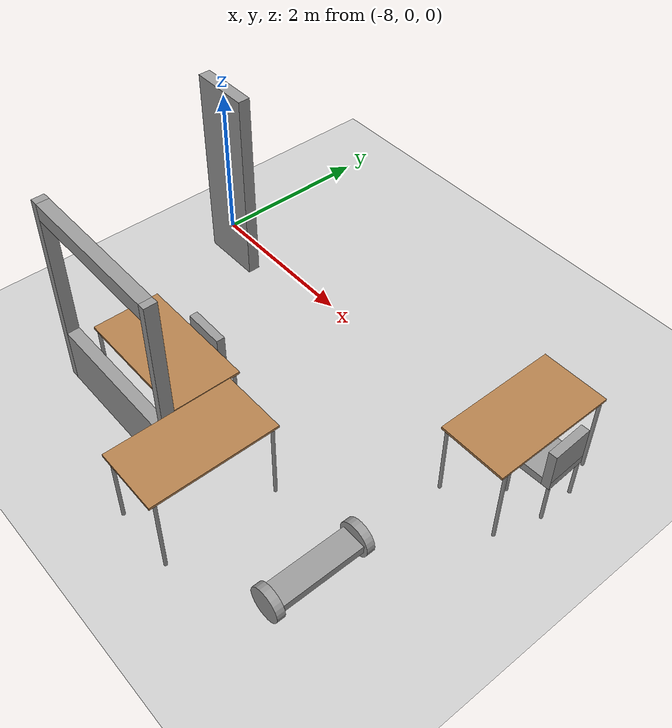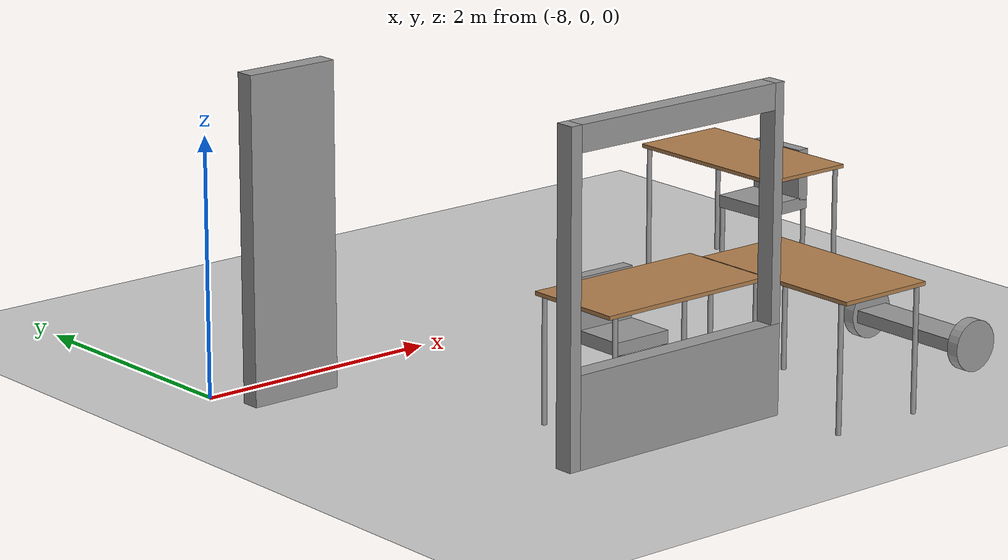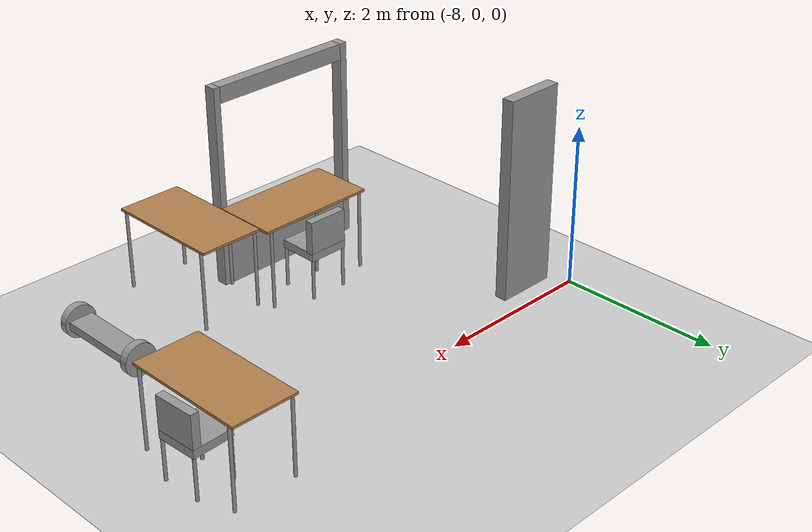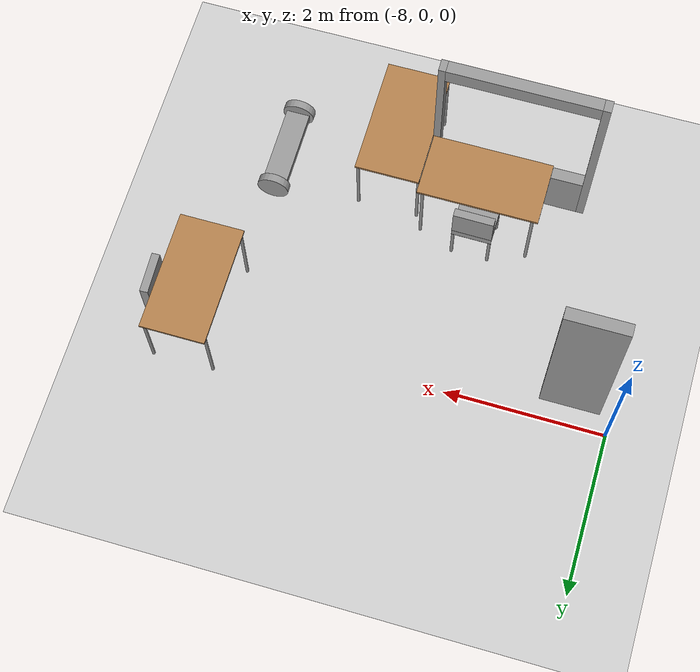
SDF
<sdf version="1.6">
 <world name="default">
  <model name="ground_plane">
   <static>1</static>
   <link name="link">
    <collision name="collision">
     <geometry><plane><normal>0 0 1</normal><size>100 100</size></plane></geometry>
     <surface>
      <contact><collide_bitmask>65535</collide_bitmask></contact>
      <friction><ode><mu>100</mu><mu2>50</mu2></ode></friction>
     </surface>
    </collision>
    <visual name="visual">
     <cast_shadows>0</cast_shadows>
     <geometry><plane><normal>0 0 1</normal><size>100 100</size></plane></geometry>
     <material>
      <script><uri>file://media/materials/scripts/gazebo.material</uri><name>Gazebo/Grey</name></script>
     </material>
    </visual>
   </link>
  </model>
  <model name="dunder_mifflin_scranton_full">
   <pose>4.5312 0.479645 0 0 -0 0</pose>
   <link name="Wall_14">
    <collision name="Wall_14_Collision">
     <geometry><box><size>0.75 0.15 2.5</size></box></geometry>
     <pose>0 0 1.25 0 -0 0</pose>
    </collision>
    <visual name="Wall_14_Visual">
     <pose>0 0 1.25 0 -0 0</pose>
     <geometry><box><size>0.75 0.15 2.5</size></box></geometry>
     <material>
      <script><uri>file://media/materials/scripts/gazebo.material</uri><name>Gazebo/Grey</name></script>
      <ambient>1 1 1 1</ambient>
     </material>
     <meta><layer>0</layer></meta>
    </visual>
    <pose>-12.0321 -0.8 0 0 -0 3.14159</pose>
   </link>
   <link name="Wall_75">
    <pose>-10.6016 -3.36883 0 0 -0 0</pose>
    <visual name="Wall_75_Visual_0">
     <pose>-0.952261 0 1.25 0 -0 0</pose>
     <geometry><box><size>0.095478 0.15 2.5</size></box></geometry>
     <material>
      <script><uri>file://media/materials/scripts/gazebo.material</uri><name>Gazebo/Grey</name></script>
      <ambient>1 1 1 1</ambient>
     </material>
     <meta><layer>0</layer></meta>
    </visual>
    <collision name="Wall_75_Collision_0">
     <geometry><box><size>0.095478 0.15 2.5</size></box></geometry>
     <pose>-0.952261 0 1.25 0 -0 0</pose>
    </collision>
    <visual name="Wall_75_Visual_1">
     <pose>0.047739 0 0.35 0 -0 0</pose>
     <geometry><box><size>1.90452 0.15 0.7</size></box></geometry>
     <material>
      <script><uri>file://media/materials/scripts/gazebo.material</uri><name>Gazebo/Grey</name></script>
      <ambient>1 1 1 1</ambient>
     </material>
     <meta><layer>0</layer></meta>
    </visual>
    <collision name="Wall_75_Collision_1">
     <geometry><box><size>1.90452 0.15 0.7</size></box></geometry>
     <pose>0.047739 0 0.35 0 -0 0</pose>
    </collision>
    <visual name="Wall_75_Visual_2">
     <pose>0.957739 0 1.6 0 -0 0</pose>
     <geometry><box><size>0.084522 0.15 1.8</size></box></geometry>
     <material>
      <script><uri>file://media/materials/scripts/gazebo.material</uri><name>Gazebo/Grey</name></script>
      <ambient>1 1 1 1</ambient>
     </material>
     <meta><layer>0</layer></meta>
    </visual>
    <collision name="Wall_75_Collision_2">
     <geometry><box><size>0.084522 0.15 1.8</size></box></geometry>
     <pose>0.957739 0 1.6 0 -0 0</pose>
    </collision>
    <visual name="Wall_75_Visual_3">
     <pose>0.005478 0 2.4 0 -0 0</pose>
     <geometry><box><size>1.82 0.15 0.2</size></box></geometry>
     <material>
      <script><uri>file://media/materials/scripts/gazebo.material</uri><name>Gazebo/Grey</name></script>
      <ambient>1 1 1 1</ambient>
     </material>
     <meta><layer>0</layer></meta>
    </visual>
    <collision name="Wall_75_Collision_3">
     <geometry><box><size>1.82 0.15 0.2</size></box></geometry>
     <pose>0.005478 0 2.4 0 -0 0</pose>
    </collision>
   </link>
   <static>1</static>
  </model>
  <model name="table_0">
   <static>1</static>
   <link name="link">
    <collision name="surface">
     <pose>0 0 1 0 -0 0</pose>
     <geometry><box><size>1.5 0.8 0.03</size></box></geometry>
     <surface><friction><ode><mu>0.6</mu><mu2>0.6</mu2></ode></friction></surface>
    </collision>
    <visual name="visual1">
     <pose>0 0 1 0 -0 0</pose>
     <geometry><box><size>1.5 0.8 0.03</size></box></geometry>
     <material>
      <script><uri>file://media/materials/scripts/gazebo.material</uri><name>Gazebo/Wood</name></script>
     </material>
    </visual>
    <collision name="front_left_leg">
     <pose>0.68 0.38 0.5 0 -0 0</pose>
     <geometry><cylinder><radius>0.02</radius><length>1</length></cylinder></geometry>
    </collision>
    <visual name="front_left_leg">
     <pose>0.68 0.38 0.5 0 -0 0</pose>
     <geometry><cylinder><radius>0.02</radius><length>1</length></cylinder></geometry>
     <material>
      <script><uri>file://media/materials/scripts/gazebo.material</uri><name>Gazebo/Grey</name></script>
     </material>
    </visual>
    <collision name="front_right_leg">
     <pose>0.68 -0.38 0.5 0 -0 0</pose>
     <geometry><cylinder><radius>0.02</radius><length>1</length></cylinder></geometry>
    </collision>
    <visual name="front_right_leg">
     <pose>0.68 -0.38 0.5 0 -0 0</pose>
     <geometry><cylinder><radius>0.02</radius><length>1</length></cylinder></geometry>
     <material>
      <script><uri>file://media/materials/scripts/gazebo.material</uri><name>Gazebo/Grey</name></script>
     </material>
    </visual>
    <collision name="back_right_leg">
     <pose>-0.68 -0.38 0.5 0 -0 0</pose>
     <geometry><cylinder><radius>0.02</radius><length>1</length></cylinder></geometry>
    </collision>
    <visual name="back_right_leg">
     <pose>-0.68 -0.38 0.5 0 -0 0</pose>
     <geometry><cylinder><radius>0.02</radius><length>1</length></cylinder></geometry>
     <material>
      <script><uri>file://media/materials/scripts/gazebo.material</uri><name>Gazebo/Grey</name></script>
     </material>
    </visual>
    <collision name="back_left_leg">
     <pose>-0.68 0.38 0.5 0 -0 0</pose>
     <geometry><cylinder><radius>0.02</radius><length>1</length></cylinder></geometry>
    </collision>
    <visual name="back_left_leg">
     <pose>-0.68 0.38 0.5 0 -0 0</pose>
     <geometry><cylinder><radius>0.02</radius><length>1</length></cylinder></geometry>
     <material>
      <script><uri>file://media/materials/scripts/gazebo.material</uri><name>Gazebo/Grey</name></script>
     </material>
    </visual>
   </link>
   <pose>-5.82777 -2.41287 0 0 -0 0</pose>
  </model>
  <model name="table_1">
   <static>1</static>
   <link name="link">
    <collision name="surface">
     <pose>0 0 1 0 -0 0</pose>
     <geometry><box><size>1.5 0.8 0.03</size></box></geometry>
     <surface><friction><ode><mu>0.6</mu><mu2>0.6</mu2></ode></friction></surface>
    </collision>
    <visual name="visual1">
     <pose>0 0 1 0 -0 0</pose>
     <geometry><box><size>1.5 0.8 0.03</size></box></geometry>
     <material>
      <script><uri>file://media/materials/scripts/gazebo.material</uri><name>Gazebo/Wood</name></script>
     </material>
    </visual>
    <collision name="front_left_leg">
     <pose>0.68 0.38 0.5 0 -0 0</pose>
     <geometry><cylinder><radius>0.02</radius><length>1</length></cylinder></geometry>
    </collision>
    <visual name="front_left_leg">
     <pose>0.68 0.38 0.5 0 -0 0</pose>
     <geometry><cylinder><radius>0.02</radius><length>1</length></cylinder></geometry>
     <material>
      <script><uri>file://media/materials/scripts/gazebo.material</uri><name>Gazebo/Grey</name></script>
     </material>
    </visual>
    <collision name="front_right_leg">
     <pose>0.68 -0.38 0.5 0 -0 0</pose>
     <geometry><cylinder><radius>0.02</radius><length>1</length></cylinder></geometry>
    </collision>
    <visual name="front_right_leg">
     <pose>0.68 -0.38 0.5 0 -0 0</pose>
     <geometry><cylinder><radius>0.02</radius><length>1</length></cylinder></geometry>
     <material>
      <script><uri>file://media/materials/scripts/gazebo.material</uri><name>Gazebo/Grey</name></script>
     </material>
    </visual>
    <collision name="back_right_leg">
     <pose>-0.68 -0.38 0.5 0 -0 0</pose>
     <geometry><cylinder><radius>0.02</radius><length>1</length></cylinder></geometry>
    </collision>
    <visual name="back_right_leg">
     <pose>-0.68 -0.38 0.5 0 -0 0</pose>
     <geometry><cylinder><radius>0.02</radius><length>1</length></cylinder></geometry>
     <material>
      <script><uri>file://media/materials/scripts/gazebo.material</uri><name>Gazebo/Grey</name></script>
     </material>
    </visual>
    <collision name="back_left_leg">
     <pose>-0.68 0.38 0.5 0 -0 0</pose>
     <geometry><cylinder><radius>0.02</radius><length>1</length></cylinder></geometry>
    </collision>
    <visual name="back_left_leg">
     <pose>-0.68 0.38 0.5 0 -0 0</pose>
     <geometry><cylinder><radius>0.02</radius><length>1</length></cylinder></geometry>
     <material>
      <script><uri>file://media/materials/scripts/gazebo.material</uri><name>Gazebo/Grey</name></script>
     </material>
    </visual>
   </link>
   <pose>-4.66857 -2.88819 0 0 -0 1.5708</pose>
  </model>
  <model name="table_3">
   <static>1</static>
   <link name="link">
    <collision name="surface">
     <pose>0 0 1 0 -0 0</pose>
     <geometry><box><size>1.5 0.8 0.03</size></box></geometry>
     <surface><friction><ode><mu>0.6</mu><mu2>0.6</mu2></ode></friction></surface>
    </collision>
    <visual name="visual1">
     <pose>0 0 1 0 -0 0</pose>
     <geometry><box><size>1.5 0.8 0.03</size></box></geometry>
     <material>
      <script><uri>file://media/materials/scripts/gazebo.material</uri><name>Gazebo/Wood</name></script>
     </material>
    </visual>
    <collision name="front_left_leg">
     <pose>0.68 0.38 0.5 0 -0 0</pose>
     <geometry><cylinder><radius>0.02</radius><length>1</length></cylinder></geometry>
    </collision>
    <visual name="front_left_leg">
     <pose>0.68 0.38 0.5 0 -0 0</pose>
     <geometry><cylinder><radius>0.02</radius><length>1</length></cylinder></geometry>
     <material>
      <script><uri>file://media/materials/scripts/gazebo.material</uri><name>Gazebo/Grey</name></script>
     </material>
    </visual>
    <collision name="front_right_leg">
     <pose>0.68 -0.38 0.5 0 -0 0</pose>
     <geometry><cylinder><radius>0.02</radius><length>1</length></cylinder></geometry>
    </collision>
    <visual name="front_right_leg">
     <pose>0.68 -0.38 0.5 0 -0 0</pose>
     <geometry><cylinder><radius>0.02</radius><length>1</length></cylinder></geometry>
     <material>
      <script><uri>file://media/materials/scripts/gazebo.material</uri><name>Gazebo/Grey</name></script>
     </material>
    </visual>
    <collision name="back_right_leg">
     <pose>-0.68 -0.38 0.5 0 -0 0</pose>
     <geometry><cylinder><radius>0.02</radius><length>1</length></cylinder></geometry>
    </collision>
    <visual name="back_right_leg">
     <pose>-0.68 -0.38 0.5 0 -0 0</pose>
     <geometry><cylinder><radius>0.02</radius><length>1</length></cylinder></geometry>
     <material>
      <script><uri>file://media/materials/scripts/gazebo.material</uri><name>Gazebo/Grey</name></script>
     </material>
    </visual>
    <collision name="back_left_leg">
     <pose>-0.68 0.38 0.5 0 -0 0</pose>
     <geometry><cylinder><radius>0.02</radius><length>1</length></cylinder></geometry>
    </collision>
    <visual name="back_left_leg">
     <pose>-0.68 0.38 0.5 0 -0 0</pose>
     <geometry><cylinder><radius>0.02</radius><length>1</length></cylinder></geometry>
     <material>
      <script><uri>file://media/materials/scripts/gazebo.material</uri><name>Gazebo/Grey</name></script>
     </material>
    </visual>
   </link>
   <pose>-2.85201 -0.198308 0 0 0 -1.5708</pose>
  </model>
  <model name="chair_1">
   <link name="link_0">
    <inertial>
     <mass>1</mass>
     <inertia><ixx>0.145833</ixx><ixy>0</ixy><ixz>0</ixz><iyy>0.145833</iyy><iyz>0</iyz><izz>0.125</izz></inertia>
    </inertial>
    <pose>-0.23 -0.19667 -0.280001 0 -0 0</pose>
    <visual name="visual">
     <geometry><cylinder><radius>0.02</radius><length>0.5</length></cylinder></geometry>
     <material>
      <lighting>1</lighting>
      <script><uri>file://media/materials/scripts/gazebo.material</uri><name>Gazebo/Grey</name></script>
      <shader type="vertex"><normal_map>__default__</normal_map></shader>
      <ambient>0.3 0.3 0.3 1</ambient>
      <diffuse>0.7 0.7 0.7 1</diffuse>
      <specular>0.01 0.01 0.01 1</specular>
      <emissive>0 0 0 1</emissive>
     </material>
    </visual>
    <collision name="collision">
     <geometry><cylinder><radius>0.02</radius><length>0.5</length></cylinder></geometry>
     <surface>
      <friction>
       <ode><mu>1</mu><mu2>1</mu2><fdir1>0 0 0</fdir1><slip1>0</slip1><slip2>0</slip2></ode>
       <torsional>
        <coefficient>1</coefficient>
        <patch_radius>0</patch_radius>
        <surface_radius>0</surface_radius>
        <use_patch_radius>1</use_patch_radius>
        <ode><slip>0</slip></ode>
       </torsional>
      </friction>
      <bounce><restitution_coefficient>0</restitution_coefficient><threshold>1e+06</threshold></bounce>
      <contact>
       <collide_without_contact>0</collide_without_contact>
       <collide_without_contact_bitmask>1</collide_without_contact_bitmask>
       <collide_bitmask>1</collide_bitmask>
       <ode>
        <soft_cfm>0</soft_cfm>
        <soft_erp>0.2</soft_erp>
        <kp>1e+13</kp>
        <kd>1</kd>
        <max_vel>0.01</max_vel>
        <min_depth>0</min_depth>
       </ode>
       <bullet>
        <split_impulse>1</split_impulse>
        <split_impulse_penetration_threshold>-0.01</split_impulse_penetration_threshold>
        <soft_cfm>0</soft_cfm>
        <soft_erp>0.2</soft_erp>
        <kp>1e+13</kp>
        <kd>1</kd>
       </bullet>
      </contact>
     </surface>
    </collision>
   </link>
   <link name="link_0_clone">
    <inertial>
     <mass>1</mass>
     <inertia><ixx>0.145833</ixx><ixy>0</ixy><ixz>0</ixz><iyy>0.145833</iyy><iyz>0</iyz><izz>0.125</izz></inertia>
    </inertial>
    <pose>0.23 -0.19667 -0.280001 0 -0 0</pose>
    <visual name="visual">
     <geometry><cylinder><radius>0.02</radius><length>0.5</length></cylinder></geometry>
     <material>
      <lighting>1</lighting>
      <script><uri>file://media/materials/scripts/gazebo.material</uri><name>Gazebo/Grey</name></script>
      <shader type="vertex"><normal_map>__default__</normal_map></shader>
      <ambient>0.3 0.3 0.3 1</ambient>
      <diffuse>0.7 0.7 0.7 1</diffuse>
      <specular>0.01 0.01 0.01 1</specular>
      <emissive>0 0 0 1</emissive>
     </material>
    </visual>
    <collision name="collision">
     <geometry><cylinder><radius>0.02</radius><length>0.5</length></cylinder></geometry>
     <surface>
      <friction>
       <ode><mu>1</mu><mu2>1</mu2><fdir1>0 0 0</fdir1><slip1>0</slip1><slip2>0</slip2></ode>
       <torsional>
        <coefficient>1</coefficient>
        <patch_radius>0</patch_radius>
        <surface_radius>0</surface_radius>
        <use_patch_radius>1</use_patch_radius>
        <ode><slip>0</slip></ode>
       </torsional>
      </friction>
      <bounce><restitution_coefficient>0</restitution_coefficient><threshold>1e+06</threshold></bounce>
      <contact>
       <collide_without_contact>0</collide_without_contact>
       <collide_without_contact_bitmask>1</collide_without_contact_bitmask>
       <collide_bitmask>1</collide_bitmask>
       <ode>
        <soft_cfm>0</soft_cfm>
        <soft_erp>0.2</soft_erp>
        <kp>1e+13</kp>
        <kd>1</kd>
        <max_vel>0.01</max_vel>
        <min_depth>0</min_depth>
       </ode>
       <bullet>
        <split_impulse>1</split_impulse>
        <split_impulse_penetration_threshold>-0.01</split_impulse_penetration_threshold>
        <soft_cfm>0</soft_cfm>
        <soft_erp>0.2</soft_erp>
        <kp>1e+13</kp>
        <kd>1</kd>
       </bullet>
      </contact>
     </surface>
    </collision>
   </link>
   <link name="link_0_clone_0">
    <inertial>
     <mass>1</mass>
     <inertia><ixx>0.145833</ixx><ixy>0</ixy><ixz>0</ixz><iyy>0.145833</iyy><iyz>0</iyz><izz>0.125</izz></inertia>
    </inertial>
    <pose>0.23 0.26333 -0.280001 0 -0 0</pose>
    <visual name="visual">
     <geometry><cylinder><radius>0.02</radius><length>0.5</length></cylinder></geometry>
     <material>
      <lighting>1</lighting>
      <script><uri>file://media/materials/scripts/gazebo.material</uri><name>Gazebo/Grey</name></script>
      <shader type="vertex"><normal_map>__default__</normal_map></shader>
      <ambient>0.3 0.3 0.3 1</ambient>
      <diffuse>0.7 0.7 0.7 1</diffuse>
      <specular>0.01 0.01 0.01 1</specular>
      <emissive>0 0 0 1</emissive>
     </material>
    </visual>
    <collision name="collision">
     <geometry><cylinder><radius>0.02</radius><length>0.5</length></cylinder></geometry>
     <surface>
      <friction>
       <ode><mu>1</mu><mu2>1</mu2><fdir1>0 0 0</fdir1><slip1>0</slip1><slip2>0</slip2></ode>
       <torsional>
        <coefficient>1</coefficient>
        <patch_radius>0</patch_radius>
        <surface_radius>0</surface_radius>
        <use_patch_radius>1</use_patch_radius>
        <ode><slip>0</slip></ode>
       </torsional>
      </friction>
      <bounce><restitution_coefficient>0</restitution_coefficient><threshold>1e+06</threshold></bounce>
      <contact>
       <collide_without_contact>0</collide_without_contact>
       <collide_without_contact_bitmask>1</collide_without_contact_bitmask>
       <collide_bitmask>1</collide_bitmask>
       <ode>
        <soft_cfm>0</soft_cfm>
        <soft_erp>0.2</soft_erp>
        <kp>1e+13</kp>
        <kd>1</kd>
        <max_vel>0.01</max_vel>
        <min_depth>0</min_depth>
       </ode>
       <bullet>
        <split_impulse>1</split_impulse>
        <split_impulse_penetration_threshold>-0.01</split_impulse_penetration_threshold>
        <soft_cfm>0</soft_cfm>
        <soft_erp>0.2</soft_erp>
        <kp>1e+13</kp>
        <kd>1</kd>
       </bullet>
      </contact>
     </surface>
    </collision>
   </link>
   <link name="link_0_clone_1">
    <inertial>
     <mass>1</mass>
     <inertia><ixx>0.145833</ixx><ixy>0</ixy><ixz>0</ixz><iyy>0.145833</iyy><iyz>0</iyz><izz>0.125</izz></inertia>
    </inertial>
    <pose>-0.23 0.26333 -0.280001 0 -0 0</pose>
    <visual name="visual">
     <geometry><cylinder><radius>0.02</radius><length>0.5</length></cylinder></geometry>
     <material>
      <lighting>1</lighting>
      <script><uri>file://media/materials/scripts/gazebo.material</uri><name>Gazebo/Grey</name></script>
      <shader type="vertex"><normal_map>__default__</normal_map></shader>
      <ambient>0.3 0.3 0.3 1</ambient>
      <diffuse>0.7 0.7 0.7 1</diffuse>
      <specular>0.01 0.01 0.01 1</specular>
      <emissive>0 0 0 1</emissive>
     </material>
    </visual>
    <collision name="collision">
     <geometry><cylinder><radius>0.02</radius><length>0.5</length></cylinder></geometry>
     <surface>
      <friction>
       <ode><mu>1</mu><mu2>1</mu2><fdir1>0 0 0</fdir1><slip1>0</slip1><slip2>0</slip2></ode>
       <torsional>
        <coefficient>1</coefficient>
        <patch_radius>0</patch_radius>
        <surface_radius>0</surface_radius>
        <use_patch_radius>1</use_patch_radius>
        <ode><slip>0</slip></ode>
       </torsional>
      </friction>
      <bounce><restitution_coefficient>0</restitution_coefficient><threshold>1e+06</threshold></bounce>
      <contact>
       <collide_without_contact>0</collide_without_contact>
       <collide_without_contact_bitmask>1</collide_without_contact_bitmask>
       <collide_bitmask>1</collide_bitmask>
       <ode>
        <soft_cfm>0</soft_cfm>
        <soft_erp>0.2</soft_erp>
        <kp>1e+13</kp>
        <kd>1</kd>
        <max_vel>0.01</max_vel>
        <min_depth>0</min_depth>
       </ode>
       <bullet>
        <split_impulse>1</split_impulse>
        <split_impulse_penetration_threshold>-0.01</split_impulse_penetration_threshold>
        <soft_cfm>0</soft_cfm>
        <soft_erp>0.2</soft_erp>
        <kp>1e+13</kp>
        <kd>1</kd>
       </bullet>
      </contact>
     </surface>
    </collision>
   </link>
   <link name="link_2">
    <inertial>
     <mass>1</mass>
     <inertia>
      <ixx>0.166667</ixx>
      <ixy>0</ixy>
      <ixz>0</ixz>
      <iyy>0.166667</iyy>
      <iyz>0</iyz>
      <izz>0.166667</izz>
     </inertia>
    </inertial>
    <pose>0 0.03333 0.019999 0 -0 0</pose>
    <visual name="visual">
     <geometry><box><size>0.5 0.5 0.1</size></box></geometry>
     <material>
      <lighting>1</lighting>
      <script><uri>file://media/materials/scripts/gazebo.material</uri><name>Gazebo/Grey</name></script>
      <shader type="vertex"><normal_map>__default__</normal_map></shader>
      <ambient>0.3 0.3 0.3 1</ambient>
      <diffuse>0.7 0.7 0.7 1</diffuse>
      <specular>0.01 0.01 0.01 1</specular>
      <emissive>0 0 0 1</emissive>
     </material>
    </visual>
    <collision name="collision">
     <geometry><box><size>0.5 0.5 0.1</size></box></geometry>
     <surface>
      <friction>
       <ode><mu>1</mu><mu2>1</mu2><fdir1>0 0 0</fdir1><slip1>0</slip1><slip2>0</slip2></ode>
       <torsional>
        <coefficient>1</coefficient>
        <patch_radius>0</patch_radius>
        <surface_radius>0</surface_radius>
        <use_patch_radius>1</use_patch_radius>
        <ode><slip>0</slip></ode>
       </torsional>
      </friction>
      <bounce><restitution_coefficient>0</restitution_coefficient><threshold>1e+06</threshold></bounce>
      <contact>
       <collide_without_contact>0</collide_without_contact>
       <collide_without_contact_bitmask>1</collide_without_contact_bitmask>
       <collide_bitmask>1</collide_bitmask>
       <ode>
        <soft_cfm>0</soft_cfm>
        <soft_erp>0.2</soft_erp>
        <kp>1e+13</kp>
        <kd>1</kd>
        <max_vel>0.01</max_vel>
        <min_depth>0</min_depth>
       </ode>
       <bullet>
        <split_impulse>1</split_impulse>
        <split_impulse_penetration_threshold>-0.01</split_impulse_penetration_threshold>
        <soft_cfm>0</soft_cfm>
        <soft_erp>0.2</soft_erp>
        <kp>1e+13</kp>
        <kd>1</kd>
       </bullet>
      </contact>
     </surface>
    </collision>
   </link>
   <link name="link_2_clone">
    <inertial>
     <mass>1</mass>
     <inertia>
      <ixx>0.166667</ixx>
      <ixy>0</ixy>
      <ixz>0</ixz>
      <iyy>0.166667</iyy>
      <iyz>0</iyz>
      <izz>0.166667</izz>
     </inertia>
    </inertial>
    <pose>0 -0.166646 0.220004 1.5707 -0 0</pose>
    <visual name="visual">
     <geometry><box><size>0.5 0.5 0.1</size></box></geometry>
     <material>
      <lighting>1</lighting>
      <script><uri>file://media/materials/scripts/gazebo.material</uri><name>Gazebo/Grey</name></script>
      <shader type="vertex"><normal_map>__default__</normal_map></shader>
      <ambient>0.3 0.3 0.3 1</ambient>
      <diffuse>0.7 0.7 0.7 1</diffuse>
      <specular>0.01 0.01 0.01 1</specular>
      <emissive>0 0 0 1</emissive>
     </material>
    </visual>
    <collision name="collision">
     <geometry><box><size>0.5 0.5 0.1</size></box></geometry>
     <surface>
      <friction>
       <ode><mu>1</mu><mu2>1</mu2><fdir1>0 0 0</fdir1><slip1>0</slip1><slip2>0</slip2></ode>
       <torsional>
        <coefficient>1</coefficient>
        <patch_radius>0</patch_radius>
        <surface_radius>0</surface_radius>
        <use_patch_radius>1</use_patch_radius>
        <ode><slip>0</slip></ode>
       </torsional>
      </friction>
      <bounce><restitution_coefficient>0</restitution_coefficient><threshold>1e+06</threshold></bounce>
      <contact>
       <collide_without_contact>0</collide_without_contact>
       <collide_without_contact_bitmask>1</collide_without_contact_bitmask>
       <collide_bitmask>1</collide_bitmask>
       <ode>
        <soft_cfm>0</soft_cfm>
        <soft_erp>0.2</soft_erp>
        <kp>1e+13</kp>
        <kd>1</kd>
        <max_vel>0.01</max_vel>
        <min_depth>0</min_depth>
       </ode>
       <bullet>
        <split_impulse>1</split_impulse>
        <split_impulse_penetration_threshold>-0.01</split_impulse_penetration_threshold>
        <soft_cfm>0</soft_cfm>
        <soft_erp>0.2</soft_erp>
        <kp>1e+13</kp>
        <kd>1</kd>
       </bullet>
      </contact>
     </surface>
    </collision>
   </link>
   <joint name="link_0_clone_JOINT_2" type="fixed">
    <parent>link_2</parent>
    <child>link_0_clone</child>
    <physics>
     <ode><limit><cfm>0</cfm><erp>0.2</erp></limit><suspension><cfm>0</cfm><erp>0.2</erp></suspension></ode>
    </physics>
   </joint>
   <joint name="link_2_JOINT_1" type="fixed">
    <parent>link_2</parent>
    <child>link_0</child>
    <physics>
     <ode><limit><cfm>0</cfm><erp>0.2</erp></limit><suspension><cfm>0</cfm><erp>0.2</erp></suspension></ode>
    </physics>
   </joint>
   <joint name="link_2_JOINT_3" type="fixed">
    <parent>link_2</parent>
    <child>link_0_clone_0</child>
    <physics>
     <ode><limit><cfm>0</cfm><erp>0.2</erp></limit><suspension><cfm>0</cfm><erp>0.2</erp></suspension></ode>
    </physics>
   </joint>
   <joint name="link_2_JOINT_4" type="fixed">
    <parent>link_2</parent>
    <child>link_0_clone_1</child>
    <physics>
     <ode><limit><cfm>0</cfm><erp>0.2</erp></limit><suspension><cfm>0</cfm><erp>0.2</erp></suspension></ode>
    </physics>
   </joint>
   <joint name="link_2_JOINT_5" type="fixed">
    <parent>link_2</parent>
    <child>link_2_clone</child>
    <physics>
     <ode><limit><cfm>0</cfm><erp>0.2</erp></limit><suspension><cfm>0</cfm><erp>0.2</erp></suspension></ode>
    </physics>
   </joint>
   <static>0</static>
   <pose>-2.51479 -0.134499 0.529996 1e-06 -0 1.61189</pose>
  </model>
  <model name="chair_6">
   <link name="link_0">
    <inertial>
     <mass>1</mass>
     <inertia><ixx>0.145833</ixx><ixy>0</ixy><ixz>0</ixz><iyy>0.145833</iyy><iyz>0</iyz><izz>0.125</izz></inertia>
    </inertial>
    <pose>-0.23 -0.19667 -0.280001 0 -0 0</pose>
    <visual name="visual">
     <geometry><cylinder><radius>0.02</radius><length>0.5</length></cylinder></geometry>
     <material>
      <lighting>1</lighting>
      <script><uri>file://media/materials/scripts/gazebo.material</uri><name>Gazebo/Grey</name></script>
      <shader type="vertex"><normal_map>__default__</normal_map></shader>
      <ambient>0.3 0.3 0.3 1</ambient>
      <diffuse>0.7 0.7 0.7 1</diffuse>
      <specular>0.01 0.01 0.01 1</specular>
      <emissive>0 0 0 1</emissive>
     </material>
    </visual>
    <collision name="collision">
     <geometry><cylinder><radius>0.02</radius><length>0.5</length></cylinder></geometry>
     <surface>
      <friction>
       <ode><mu>1</mu><mu2>1</mu2><fdir1>0 0 0</fdir1><slip1>0</slip1><slip2>0</slip2></ode>
       <torsional>
        <coefficient>1</coefficient>
        <patch_radius>0</patch_radius>
        <surface_radius>0</surface_radius>
        <use_patch_radius>1</use_patch_radius>
        <ode><slip>0</slip></ode>
       </torsional>
      </friction>
      <bounce><restitution_coefficient>0</restitution_coefficient><threshold>1e+06</threshold></bounce>
      <contact>
       <collide_without_contact>0</collide_without_contact>
       <collide_without_contact_bitmask>1</collide_without_contact_bitmask>
       <collide_bitmask>1</collide_bitmask>
       <ode>
        <soft_cfm>0</soft_cfm>
        <soft_erp>0.2</soft_erp>
        <kp>1e+13</kp>
        <kd>1</kd>
        <max_vel>0.01</max_vel>
        <min_depth>0</min_depth>
       </ode>
       <bullet>
        <split_impulse>1</split_impulse>
        <split_impulse_penetration_threshold>-0.01</split_impulse_penetration_threshold>
        <soft_cfm>0</soft_cfm>
        <soft_erp>0.2</soft_erp>
        <kp>1e+13</kp>
        <kd>1</kd>
       </bullet>
      </contact>
     </surface>
    </collision>
   </link>
   <link name="link_0_clone">
    <inertial>
     <mass>1</mass>
     <inertia><ixx>0.145833</ixx><ixy>0</ixy><ixz>0</ixz><iyy>0.145833</iyy><iyz>0</iyz><izz>0.125</izz></inertia>
    </inertial>
    <pose>0.23 -0.19667 -0.280001 0 -0 0</pose>
    <visual name="visual">
     <geometry><cylinder><radius>0.02</radius><length>0.5</length></cylinder></geometry>
     <material>
      <lighting>1</lighting>
      <script><uri>file://media/materials/scripts/gazebo.material</uri><name>Gazebo/Grey</name></script>
      <shader type="vertex"><normal_map>__default__</normal_map></shader>
      <ambient>0.3 0.3 0.3 1</ambient>
      <diffuse>0.7 0.7 0.7 1</diffuse>
      <specular>0.01 0.01 0.01 1</specular>
      <emissive>0 0 0 1</emissive>
     </material>
    </visual>
    <collision name="collision">
     <geometry><cylinder><radius>0.02</radius><length>0.5</length></cylinder></geometry>
     <surface>
      <friction>
       <ode><mu>1</mu><mu2>1</mu2><fdir1>0 0 0</fdir1><slip1>0</slip1><slip2>0</slip2></ode>
       <torsional>
        <coefficient>1</coefficient>
        <patch_radius>0</patch_radius>
        <surface_radius>0</surface_radius>
        <use_patch_radius>1</use_patch_radius>
        <ode><slip>0</slip></ode>
       </torsional>
      </friction>
      <bounce><restitution_coefficient>0</restitution_coefficient><threshold>1e+06</threshold></bounce>
      <contact>
       <collide_without_contact>0</collide_without_contact>
       <collide_without_contact_bitmask>1</collide_without_contact_bitmask>
       <collide_bitmask>1</collide_bitmask>
       <ode>
        <soft_cfm>0</soft_cfm>
        <soft_erp>0.2</soft_erp>
        <kp>1e+13</kp>
        <kd>1</kd>
        <max_vel>0.01</max_vel>
        <min_depth>0</min_depth>
       </ode>
       <bullet>
        <split_impulse>1</split_impulse>
        <split_impulse_penetration_threshold>-0.01</split_impulse_penetration_threshold>
        <soft_cfm>0</soft_cfm>
        <soft_erp>0.2</soft_erp>
        <kp>1e+13</kp>
        <kd>1</kd>
       </bullet>
      </contact>
     </surface>
    </collision>
   </link>
   <link name="link_0_clone_0">
    <inertial>
     <mass>1</mass>
     <inertia><ixx>0.145833</ixx><ixy>0</ixy><ixz>0</ixz><iyy>0.145833</iyy><iyz>0</iyz><izz>0.125</izz></inertia>
    </inertial>
    <pose>0.23 0.26333 -0.280001 0 -0 0</pose>
    <visual name="visual">
     <geometry><cylinder><radius>0.02</radius><length>0.5</length></cylinder></geometry>
     <material>
      <lighting>1</lighting>
      <script><uri>file://media/materials/scripts/gazebo.material</uri><name>Gazebo/Grey</name></script>
      <shader type="vertex"><normal_map>__default__</normal_map></shader>
      <ambient>0.3 0.3 0.3 1</ambient>
      <diffuse>0.7 0.7 0.7 1</diffuse>
      <specular>0.01 0.01 0.01 1</specular>
      <emissive>0 0 0 1</emissive>
     </material>
    </visual>
    <collision name="collision">
     <geometry><cylinder><radius>0.02</radius><length>0.5</length></cylinder></geometry>
     <surface>
      <friction>
       <ode><mu>1</mu><mu2>1</mu2><fdir1>0 0 0</fdir1><slip1>0</slip1><slip2>0</slip2></ode>
       <torsional>
        <coefficient>1</coefficient>
        <patch_radius>0</patch_radius>
        <surface_radius>0</surface_radius>
        <use_patch_radius>1</use_patch_radius>
        <ode><slip>0</slip></ode>
       </torsional>
      </friction>
      <bounce><restitution_coefficient>0</restitution_coefficient><threshold>1e+06</threshold></bounce>
      <contact>
       <collide_without_contact>0</collide_without_contact>
       <collide_without_contact_bitmask>1</collide_without_contact_bitmask>
       <collide_bitmask>1</collide_bitmask>
       <ode>
        <soft_cfm>0</soft_cfm>
        <soft_erp>0.2</soft_erp>
        <kp>1e+13</kp>
        <kd>1</kd>
        <max_vel>0.01</max_vel>
        <min_depth>0</min_depth>
       </ode>
       <bullet>
        <split_impulse>1</split_impulse>
        <split_impulse_penetration_threshold>-0.01</split_impulse_penetration_threshold>
        <soft_cfm>0</soft_cfm>
        <soft_erp>0.2</soft_erp>
        <kp>1e+13</kp>
        <kd>1</kd>
       </bullet>
      </contact>
     </surface>
    </collision>
   </link>
   <link name="link_0_clone_1">
    <inertial>
     <mass>1</mass>
     <inertia><ixx>0.145833</ixx><ixy>0</ixy><ixz>0</ixz><iyy>0.145833</iyy><iyz>0</iyz><izz>0.125</izz></inertia>
    </inertial>
    <pose>-0.23 0.26333 -0.280001 0 -0 0</pose>
    <visual name="visual">
     <geometry><cylinder><radius>0.02</radius><length>0.5</length></cylinder></geometry>
     <material>
      <lighting>1</lighting>
      <script><uri>file://media/materials/scripts/gazebo.material</uri><name>Gazebo/Grey</name></script>
      <shader type="vertex"><normal_map>__default__</normal_map></shader>
      <ambient>0.3 0.3 0.3 1</ambient>
      <diffuse>0.7 0.7 0.7 1</diffuse>
      <specular>0.01 0.01 0.01 1</specular>
      <emissive>0 0 0 1</emissive>
     </material>
    </visual>
    <collision name="collision">
     <geometry><cylinder><radius>0.02</radius><length>0.5</length></cylinder></geometry>
     <surface>
      <friction>
       <ode><mu>1</mu><mu2>1</mu2><fdir1>0 0 0</fdir1><slip1>0</slip1><slip2>0</slip2></ode>
       <torsional>
        <coefficient>1</coefficient>
        <patch_radius>0</patch_radius>
        <surface_radius>0</surface_radius>
        <use_patch_radius>1</use_patch_radius>
        <ode><slip>0</slip></ode>
       </torsional>
      </friction>
      <bounce><restitution_coefficient>0</restitution_coefficient><threshold>1e+06</threshold></bounce>
      <contact>
       <collide_without_contact>0</collide_without_contact>
       <collide_without_contact_bitmask>1</collide_without_contact_bitmask>
       <collide_bitmask>1</collide_bitmask>
       <ode>
        <soft_cfm>0</soft_cfm>
        <soft_erp>0.2</soft_erp>
        <kp>1e+13</kp>
        <kd>1</kd>
        <max_vel>0.01</max_vel>
        <min_depth>0</min_depth>
       </ode>
       <bullet>
        <split_impulse>1</split_impulse>
        <split_impulse_penetration_threshold>-0.01</split_impulse_penetration_threshold>
        <soft_cfm>0</soft_cfm>
        <soft_erp>0.2</soft_erp>
        <kp>1e+13</kp>
        <kd>1</kd>
       </bullet>
      </contact>
     </surface>
    </collision>
   </link>
   <link name="link_2">
    <inertial>
     <mass>1</mass>
     <inertia>
      <ixx>0.166667</ixx>
      <ixy>0</ixy>
      <ixz>0</ixz>
      <iyy>0.166667</iyy>
      <iyz>0</iyz>
      <izz>0.166667</izz>
     </inertia>
    </inertial>
    <pose>0 0.03333 0.019999 0 -0 0</pose>
    <visual name="visual">
     <geometry><box><size>0.5 0.5 0.1</size></box></geometry>
     <material>
      <lighting>1</lighting>
      <script><uri>file://media/materials/scripts/gazebo.material</uri><name>Gazebo/Grey</name></script>
      <shader type="vertex"><normal_map>__default__</normal_map></shader>
      <ambient>0.3 0.3 0.3 1</ambient>
      <diffuse>0.7 0.7 0.7 1</diffuse>
      <specular>0.01 0.01 0.01 1</specular>
      <emissive>0 0 0 1</emissive>
     </material>
    </visual>
    <collision name="collision">
     <geometry><box><size>0.5 0.5 0.1</size></box></geometry>
     <surface>
      <friction>
       <ode><mu>1</mu><mu2>1</mu2><fdir1>0 0 0</fdir1><slip1>0</slip1><slip2>0</slip2></ode>
       <torsional>
        <coefficient>1</coefficient>
        <patch_radius>0</patch_radius>
        <surface_radius>0</surface_radius>
        <use_patch_radius>1</use_patch_radius>
        <ode><slip>0</slip></ode>
       </torsional>
      </friction>
      <bounce><restitution_coefficient>0</restitution_coefficient><threshold>1e+06</threshold></bounce>
      <contact>
       <collide_without_contact>0</collide_without_contact>
       <collide_without_contact_bitmask>1</collide_without_contact_bitmask>
       <collide_bitmask>1</collide_bitmask>
       <ode>
        <soft_cfm>0</soft_cfm>
        <soft_erp>0.2</soft_erp>
        <kp>1e+13</kp>
        <kd>1</kd>
        <max_vel>0.01</max_vel>
        <min_depth>0</min_depth>
       </ode>
       <bullet>
        <split_impulse>1</split_impulse>
        <split_impulse_penetration_threshold>-0.01</split_impulse_penetration_threshold>
        <soft_cfm>0</soft_cfm>
        <soft_erp>0.2</soft_erp>
        <kp>1e+13</kp>
        <kd>1</kd>
       </bullet>
      </contact>
     </surface>
    </collision>
   </link>
   <link name="link_2_clone">
    <inertial>
     <mass>1</mass>
     <inertia>
      <ixx>0.166667</ixx>
      <ixy>0</ixy>
      <ixz>0</ixz>
      <iyy>0.166667</iyy>
      <iyz>0</iyz>
      <izz>0.166667</izz>
     </inertia>
    </inertial>
    <pose>0 -0.166646 0.220004 1.5707 -0 0</pose>
    <visual name="visual">
     <geometry><box><size>0.5 0.5 0.1</size></box></geometry>
     <material>
      <lighting>1</lighting>
      <script><uri>file://media/materials/scripts/gazebo.material</uri><name>Gazebo/Grey</name></script>
      <shader type="vertex"><normal_map>__default__</normal_map></shader>
      <ambient>0.3 0.3 0.3 1</ambient>
      <diffuse>0.7 0.7 0.7 1</diffuse>
      <specular>0.01 0.01 0.01 1</specular>
      <emissive>0 0 0 1</emissive>
     </material>
    </visual>
    <collision name="collision">
     <geometry><box><size>0.5 0.5 0.1</size></box></geometry>
     <surface>
      <friction>
       <ode><mu>1</mu><mu2>1</mu2><fdir1>0 0 0</fdir1><slip1>0</slip1><slip2>0</slip2></ode>
       <torsional>
        <coefficient>1</coefficient>
        <patch_radius>0</patch_radius>
        <surface_radius>0</surface_radius>
        <use_patch_radius>1</use_patch_radius>
        <ode><slip>0</slip></ode>
       </torsional>
      </friction>
      <bounce><restitution_coefficient>0</restitution_coefficient><threshold>1e+06</threshold></bounce>
      <contact>
       <collide_without_contact>0</collide_without_contact>
       <collide_without_contact_bitmask>1</collide_without_contact_bitmask>
       <collide_bitmask>1</collide_bitmask>
       <ode>
        <soft_cfm>0</soft_cfm>
        <soft_erp>0.2</soft_erp>
        <kp>1e+13</kp>
        <kd>1</kd>
        <max_vel>0.01</max_vel>
        <min_depth>0</min_depth>
       </ode>
       <bullet>
        <split_impulse>1</split_impulse>
        <split_impulse_penetration_threshold>-0.01</split_impulse_penetration_threshold>
        <soft_cfm>0</soft_cfm>
        <soft_erp>0.2</soft_erp>
        <kp>1e+13</kp>
        <kd>1</kd>
       </bullet>
      </contact>
     </surface>
    </collision>
   </link>
   <joint name="link_0_clone_JOINT_2" type="fixed">
    <parent>link_2</parent>
    <child>link_0_clone</child>
    <physics>
     <ode><limit><cfm>0</cfm><erp>0.2</erp></limit><suspension><cfm>0</cfm><erp>0.2</erp></suspension></ode>
    </physics>
   </joint>
   <joint name="link_2_JOINT_1" type="fixed">
    <parent>link_2</parent>
    <child>link_0</child>
    <physics>
     <ode><limit><cfm>0</cfm><erp>0.2</erp></limit><suspension><cfm>0</cfm><erp>0.2</erp></suspension></ode>
    </physics>
   </joint>
   <joint name="link_2_JOINT_3" type="fixed">
    <parent>link_2</parent>
    <child>link_0_clone_0</child>
    <physics>
     <ode><limit><cfm>0</cfm><erp>0.2</erp></limit><suspension><cfm>0</cfm><erp>0.2</erp></suspension></ode>
    </physics>
   </joint>
   <joint name="link_2_JOINT_4" type="fixed">
    <parent>link_2</parent>
    <child>link_0_clone_1</child>
    <physics>
     <ode><limit><cfm>0</cfm><erp>0.2</erp></limit><suspension><cfm>0</cfm><erp>0.2</erp></suspension></ode>
    </physics>
   </joint>
   <joint name="link_2_JOINT_5" type="fixed">
    <parent>link_2</parent>
    <child>link_2_clone</child>
    <physics>
     <ode><limit><cfm>0</cfm><erp>0.2</erp></limit><suspension><cfm>0</cfm><erp>0.2</erp></suspension></ode>
    </physics>
   </joint>
   <static>0</static>
   <pose>-5.83102 -2.05149 0.529995 0 -0 3.13409</pose>
  </model>
  <model name="robot_0">
   <link name="link_0">
    <inertial>
     <mass>1</mass>
     <inertia>
      <ixx>0.166667</ixx>
      <ixy>0</ixy>
      <ixz>0</ixz>
      <iyy>0.166667</iyy>
      <iyz>0</iyz>
      <izz>0.166667</izz>
     </inertia>
    </inertial>
    <visual name="visual">
     <geometry><box><size>0.3 1 0.1</size></box></geometry>
     <material>
      <lighting>1</lighting>
      <script><uri>file://media/materials/scripts/gazebo.material</uri><name>Gazebo/Grey</name></script>
      <shader type="vertex"><normal_map>__default__</normal_map></shader>
      <ambient>0.3 0.3 0.3 1</ambient>
      <diffuse>0.7 0.7 0.7 1</diffuse>
      <specular>0.01 0.01 0.01 1</specular>
      <emissive>0 0 0 1</emissive>
     </material>
    </visual>
    <collision name="collision">
     <geometry><box><size>0.3 1 0.1</size></box></geometry>
     <surface>
      <friction>
       <ode><mu>1</mu><mu2>1</mu2><fdir1>0 0 0</fdir1><slip1>0</slip1><slip2>0</slip2></ode>
       <torsional>
        <coefficient>1</coefficient>
        <patch_radius>0</patch_radius>
        <surface_radius>0</surface_radius>
        <use_patch_radius>1</use_patch_radius>
        <ode><slip>0</slip></ode>
       </torsional>
      </friction>
      <bounce><restitution_coefficient>0</restitution_coefficient><threshold>1e+06</threshold></bounce>
      <contact>
       <collide_without_contact>0</collide_without_contact>
       <collide_without_contact_bitmask>1</collide_without_contact_bitmask>
       <collide_bitmask>1</collide_bitmask>
       <ode>
        <soft_cfm>0</soft_cfm>
        <soft_erp>0.2</soft_erp>
        <kp>1e+13</kp>
        <kd>1</kd>
        <max_vel>0.01</max_vel>
        <min_depth>0</min_depth>
       </ode>
       <bullet>
        <split_impulse>1</split_impulse>
        <split_impulse_penetration_threshold>-0.01</split_impulse_penetration_threshold>
        <soft_cfm>0</soft_cfm>
        <soft_erp>0.2</soft_erp>
        <kp>1e+13</kp>
        <kd>1</kd>
       </bullet>
      </contact>
     </surface>
    </collision>
   </link>
   <link name="link_1">
    <inertial>
     <mass>1</mass>
     <inertia><ixx>0.145833</ixx><ixy>0</ixy><ixz>0</ixz><iyy>0.145833</iyy><iyz>0</iyz><izz>0.125</izz></inertia>
    </inertial>
    <pose>0 -0.550019 0 1.5707 -0 0</pose>
    <visual name="visual">
     <geometry><cylinder><radius>0.2</radius><length>0.1</length></cylinder></geometry>
     <material>
      <lighting>1</lighting>
      <script><uri>file://media/materials/scripts/gazebo.material</uri><name>Gazebo/Grey</name></script>
      <shader type="vertex"><normal_map>__default__</normal_map></shader>
      <ambient>0.3 0.3 0.3 1</ambient>
      <diffuse>0.7 0.7 0.7 1</diffuse>
      <specular>0.01 0.01 0.01 1</specular>
      <emissive>0 0 0 1</emissive>
     </material>
    </visual>
    <collision name="collision">
     <geometry><cylinder><radius>0.2</radius><length>0.1</length></cylinder></geometry>
     <surface>
      <friction>
       <ode><mu>1</mu><mu2>1</mu2><fdir1>0 0 0</fdir1><slip1>0</slip1><slip2>0</slip2></ode>
       <torsional>
        <coefficient>1</coefficient>
        <patch_radius>0</patch_radius>
        <surface_radius>0</surface_radius>
        <use_patch_radius>1</use_patch_radius>
        <ode><slip>0</slip></ode>
       </torsional>
      </friction>
      <bounce><restitution_coefficient>0</restitution_coefficient><threshold>1e+06</threshold></bounce>
      <contact>
       <collide_without_contact>0</collide_without_contact>
       <collide_without_contact_bitmask>1</collide_without_contact_bitmask>
       <collide_bitmask>1</collide_bitmask>
       <ode>
        <soft_cfm>0</soft_cfm>
        <soft_erp>0.2</soft_erp>
        <kp>1e+13</kp>
        <kd>1</kd>
        <max_vel>0.01</max_vel>
        <min_depth>0</min_depth>
       </ode>
       <bullet>
        <split_impulse>1</split_impulse>
        <split_impulse_penetration_threshold>-0.01</split_impulse_penetration_threshold>
        <soft_cfm>0</soft_cfm>
        <soft_erp>0.2</soft_erp>
        <kp>1e+13</kp>
        <kd>1</kd>
       </bullet>
      </contact>
     </surface>
    </collision>
   </link>
   <link name="link_1_clone">
    <inertial>
     <mass>1</mass>
     <inertia><ixx>0.145833</ixx><ixy>0</ixy><ixz>0</ixz><iyy>0.145833</iyy><iyz>0</iyz><izz>0.125</izz></inertia>
    </inertial>
    <pose>0 0.550019 0 1.5707 -0 0</pose>
    <visual name="visual">
     <geometry><cylinder><radius>0.2</radius><length>0.1</length></cylinder></geometry>
     <material>
      <lighting>1</lighting>
      <script><uri>file://media/materials/scripts/gazebo.material</uri><name>Gazebo/Grey</name></script>
      <shader type="vertex"><normal_map>__default__</normal_map></shader>
      <ambient>0.3 0.3 0.3 1</ambient>
      <diffuse>0.7 0.7 0.7 1</diffuse>
      <specular>0.01 0.01 0.01 1</specular>
      <emissive>0 0 0 1</emissive>
     </material>
    </visual>
    <collision name="collision">
     <geometry><cylinder><radius>0.2</radius><length>0.1</length></cylinder></geometry>
     <surface>
      <friction>
       <ode><mu>1</mu><mu2>1</mu2><fdir1>0 0 0</fdir1><slip1>0</slip1><slip2>0</slip2></ode>
       <torsional>
        <coefficient>1</coefficient>
        <patch_radius>0</patch_radius>
        <surface_radius>0</surface_radius>
        <use_patch_radius>1</use_patch_radius>
        <ode><slip>0</slip></ode>
       </torsional>
      </friction>
      <bounce><restitution_coefficient>0</restitution_coefficient><threshold>1e+06</threshold></bounce>
      <contact>
       <collide_without_contact>0</collide_without_contact>
       <collide_without_contact_bitmask>1</collide_without_contact_bitmask>
       <collide_bitmask>1</collide_bitmask>
       <ode>
        <soft_cfm>0</soft_cfm>
        <soft_erp>0.2</soft_erp>
        <kp>1e+13</kp>
        <kd>1</kd>
        <max_vel>0.01</max_vel>
        <min_depth>0</min_depth>
       </ode>
       <bullet>
        <split_impulse>1</split_impulse>
        <split_impulse_penetration_threshold>-0.01</split_impulse_penetration_threshold>
        <soft_cfm>0</soft_cfm>
        <soft_erp>0.2</soft_erp>
        <kp>1e+13</kp>
        <kd>1</kd>
       </bullet>
      </contact>
     </surface>
    </collision>
   </link>
   <joint name="link_0_JOINT_0" type="revolute">
    <parent>link_0</parent>
    <child>link_1</child>
    <axis>
     <xyz>1 0 0</xyz>
     <use_parent_model_frame>0</use_parent_model_frame>
     <limit>
      <lower>-1.79769e+308</lower>
      <upper>1.79769e+308</upper>
      <effort>-1</effort>
      <velocity>-1</velocity>
     </limit>
     <dynamics>
      <spring_reference>0</spring_reference>
      <spring_stiffness>0</spring_stiffness>
      <damping>0</damping>
     </dynamics>
    </axis>
    <physics>
     <ode><limit><cfm>0</cfm><erp>0.2</erp></limit><suspension><cfm>0</cfm><erp>0.2</erp></suspension></ode>
    </physics>
   </joint>
   <joint name="link_0_JOINT_1" type="revolute">
    <parent>link_0</parent>
    <child>link_1_clone</child>
    <axis>
     <xyz>1 0 0</xyz>
     <use_parent_model_frame>0</use_parent_model_frame>
     <limit>
      <lower>-1.79769e+308</lower>
      <upper>1.79769e+308</upper>
      <effort>-1</effort>
      <velocity>-1</velocity>
     </limit>
     <dynamics>
      <spring_reference>0</spring_reference>
      <spring_stiffness>0</spring_stiffness>
      <damping>0</damping>
     </dynamics>
    </axis>
    <physics>
     <ode><limit><cfm>0</cfm><erp>0.2</erp></limit><suspension><cfm>0</cfm><erp>0.2</erp></suspension></ode>
    </physics>
   </joint>
   <static>0</static>
   <pose>-3.22941 -2.57204 0.199997 6e-06 0.000107 0</pose>
  </model>
 </world>
</sdf>
